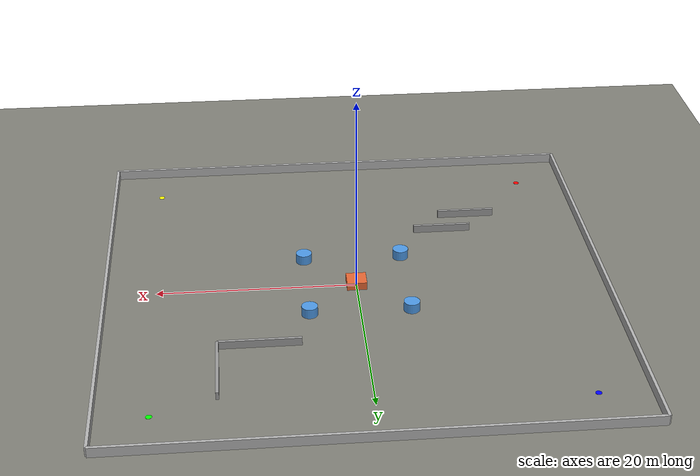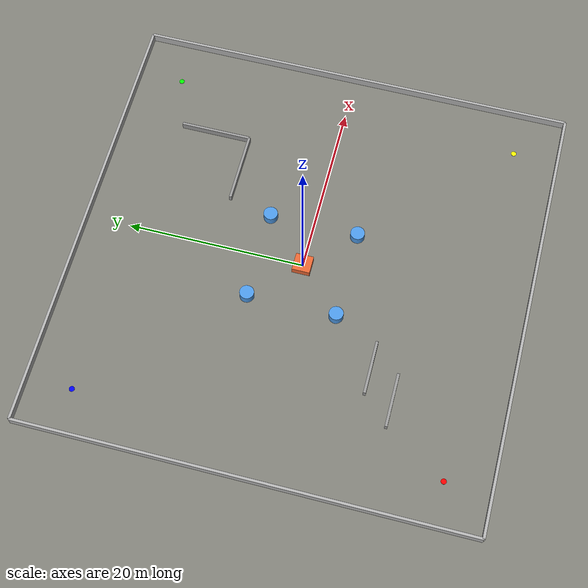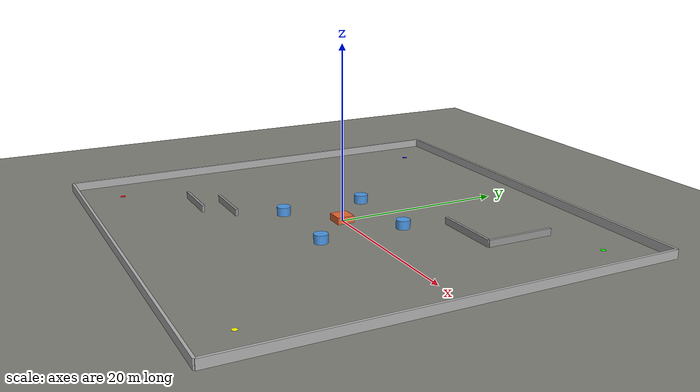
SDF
<?xml version="1.0" ?>
<sdf version="1.6">
  <world name="algorithm_arena">

    <physics type="ode">
      <real_time_update_rate>1000.0</real_time_update_rate>
      <max_step_size>0.001</max_step_size>
      <real_time_factor>1</real_time_factor>
    </physics>

    <scene>
      <ambient>0.6 0.6 0.6 1</ambient>
      <background>0.7 0.8 0.95 1</background>
      <shadows>1</shadows>
    </scene>

    <light type="directional" name="sun">
      <cast_shadows>true</cast_shadows>
      <pose>0 0 10 0 0 0</pose>
      <diffuse>0.9 0.9 0.9 1</diffuse>
      <specular>0.2 0.2 0.2 1</specular>
      <attenuation>
        <range>1000</range>
        <constant>0.9</constant>
        <linear>0.01</linear>
        <quadratic>0.001</quadratic>
      </attenuation>
      <direction>-0.5 0.1 -0.9</direction>
    </light>

    <!-- 地面 -->
    <model name="ground_plane">
      <static>true</static>
      <link name="link">
        <collision name="collision">
          <geometry><plane><normal>0 0 1</normal><size>100 100</size></plane></geometry>
          <surface><friction><ode><mu>100</mu><mu2>50</mu2></ode></friction></surface>
        </collision>
        <visual name="visual">
          <geometry><plane><normal>0 0 1</normal><size>100 100</size></plane></geometry>
          <material>
            <ambient>0.45 0.45 0.42 1</ambient>
            <diffuse>0.5 0.5 0.47 1</diffuse>
          </material>
        </visual>
      </link>
    </model>

    <!-- 全局位姿发布（供轨迹记录/区域触发使用） -->
    <plugin name="gazebo_ros_state" filename="libgazebo_ros_state.so"/>

    <!-- ==================== 边界墙 ==================== -->
    <!-- 北墙 -->
    <model name="wall_north">
      <static>true</static>
      <link name="link">
        <pose>0 25 0.5 0 0 0</pose>
        <collision name="c"><geometry><box><size>50 0.3 1.0</size></box></geometry></collision>
        <visual name="v">
          <geometry><box><size>50 0.3 1.0</size></box></geometry>
          <material><ambient>0.6 0.6 0.6 1</ambient><diffuse>0.7 0.7 0.7 1</diffuse></material>
        </visual>
      </link>
    </model>
    <!-- 南墙 -->
    <model name="wall_south">
      <static>true</static>
      <link name="link">
        <pose>0 -25 0.5 0 0 0</pose>
        <collision name="c"><geometry><box><size>50 0.3 1.0</size></box></geometry></collision>
        <visual name="v">
          <geometry><box><size>50 0.3 1.0</size></box></geometry>
          <material><ambient>0.6 0.6 0.6 1</ambient><diffuse>0.7 0.7 0.7 1</diffuse></material>
        </visual>
      </link>
    </model>
    <!-- 东墙 -->
    <model name="wall_east">
      <static>true</static>
      <link name="link">
        <pose>25 0 0.5 0 0 1.5708</pose>
        <collision name="c"><geometry><box><size>50 0.3 1.0</size></box></geometry></collision>
        <visual name="v">
          <geometry><box><size>50 0.3 1.0</size></box></geometry>
          <material><ambient>0.6 0.6 0.6 1</ambient><diffuse>0.7 0.7 0.7 1</diffuse></material>
        </visual>
      </link>
    </model>
    <!-- 西墙 -->
    <model name="wall_west">
      <static>true</static>
      <link name="link">
        <pose>-25 0 0.5 0 0 1.5708</pose>
        <collision name="c"><geometry><box><size>50 0.3 1.0</size></box></geometry></collision>
        <visual name="v">
          <geometry><box><size>50 0.3 1.0</size></box></geometry>
          <material><ambient>0.6 0.6 0.6 1</ambient><diffuse>0.7 0.7 0.7 1</diffuse></material>
        </visual>
      </link>
    </model>

    <!-- ==================== 障碍物区域 ==================== -->
    <!-- 中央障碍物群 -->
    <model name="obstacle_box_1">
      <static>true</static>
      <link name="link">
        <pose>0 0 0.4 0 0 0</pose>
        <collision name="c"><geometry><box><size>2.0 2.0 0.8</size></box></geometry></collision>
        <visual name="v">
          <geometry><box><size>2.0 2.0 0.8</size></box></geometry>
          <material><ambient>0.8 0.3 0.1 1</ambient><diffuse>0.9 0.4 0.2 1</diffuse></material>
        </visual>
      </link>
    </model>

    <model name="obstacle_cylinder_1">
      <static>true</static>
      <link name="link">
        <pose>5 5 0.5 0 0 0</pose>
        <collision name="c"><geometry><cylinder><radius>0.8</radius><length>1.0</length></cylinder></geometry></collision>
        <visual name="v">
          <geometry><cylinder><radius>0.8</radius><length>1.0</length></cylinder></geometry>
          <material><ambient>0.2 0.5 0.8 1</ambient><diffuse>0.3 0.6 0.9 1</diffuse></material>
        </visual>
      </link>
    </model>

    <model name="obstacle_cylinder_2">
      <static>true</static>
      <link name="link">
        <pose>-5 5 0.5 0 0 0</pose>
        <collision name="c"><geometry><cylinder><radius>0.8</radius><length>1.0</length></cylinder></geometry></collision>
        <visual name="v">
          <geometry><cylinder><radius>0.8</radius><length>1.0</length></cylinder></geometry>
          <material><ambient>0.2 0.5 0.8 1</ambient><diffuse>0.3 0.6 0.9 1</diffuse></material>
        </visual>
      </link>
    </model>

    <model name="obstacle_cylinder_3">
      <static>true</static>
      <link name="link">
        <pose>5 -5 0.5 0 0 0</pose>
        <collision name="c"><geometry><cylinder><radius>0.8</radius><length>1.0</length></cylinder></geometry></collision>
        <visual name="v">
          <geometry><cylinder><radius>0.8</radius><length>1.0</length></cylinder></geometry>
          <material><ambient>0.2 0.5 0.8 1</ambient><diffuse>0.3 0.6 0.9 1</diffuse></material>
        </visual>
      </link>
    </model>

    <model name="obstacle_cylinder_4">
      <static>true</static>
      <link name="link">
        <pose>-5 -5 0.5 0 0 0</pose>
        <collision name="c"><geometry><cylinder><radius>0.8</radius><length>1.0</length></cylinder></geometry></collision>
        <visual name="v">
          <geometry><cylinder><radius>0.8</radius><length>1.0</length></cylinder></geometry>
          <material><ambient>0.2 0.5 0.8 1</ambient><diffuse>0.3 0.6 0.9 1</diffuse></material>
        </visual>
      </link>
    </model>

    <!-- L形通道墙 -->
    <model name="wall_L_h">
      <static>true</static>
      <link name="link">
        <pose>10 10 0.4 0 0 0</pose>
        <collision name="c"><geometry><box><size>8.0 0.3 0.8</size></box></geometry></collision>
        <visual name="v">
          <geometry><box><size>8.0 0.3 0.8</size></box></geometry>
          <material><ambient>0.5 0.5 0.5 1</ambient><diffuse>0.6 0.6 0.6 1</diffuse></material>
        </visual>
      </link>
    </model>
    <model name="wall_L_v">
      <static>true</static>
      <link name="link">
        <pose>14 14 0.4 0 0 1.5708</pose>
        <collision name="c"><geometry><box><size>8.0 0.3 0.8</size></box></geometry></collision>
        <visual name="v">
          <geometry><box><size>8.0 0.3 0.8</size></box></geometry>
          <material><ambient>0.5 0.5 0.5 1</ambient><diffuse>0.6 0.6 0.6 1</diffuse></material>
        </visual>
      </link>
    </model>

    <!-- S形通道墙 -->
    <model name="wall_S_1">
      <static>true</static>
      <link name="link">
        <pose>-10 -10 0.4 0 0 0</pose>
        <collision name="c"><geometry><box><size>6.0 0.3 0.8</size></box></geometry></collision>
        <visual name="v">
          <geometry><box><size>6.0 0.3 0.8</size></box></geometry>
          <material><ambient>0.5 0.5 0.5 1</ambient><diffuse>0.6 0.6 0.6 1</diffuse></material>
        </visual>
      </link>
    </model>
    <model name="wall_S_2">
      <static>true</static>
      <link name="link">
        <pose>-13 -13 0.4 0 0 0</pose>
        <collision name="c"><geometry><box><size>6.0 0.3 0.8</size></box></geometry></collision>
        <visual name="v">
          <geometry><box><size>6.0 0.3 0.8</size></box></geometry>
          <material><ambient>0.5 0.5 0.5 1</ambient><diffuse>0.6 0.6 0.6 1</diffuse></material>
        </visual>
      </link>
    </model>

    <!-- ==================== 地面标记（视觉参考） ==================== -->
    <!-- 中心标记 -->
    <model name="center_mark">
      <static>true</static>
      <link name="link">
        <pose>0 0 0.01 0 0 0</pose>
        <visual name="v">
          <geometry><cylinder><radius>0.5</radius><length>0.02</length></cylinder></geometry>
          <material><ambient>0.9 0.9 0.0 1</ambient><diffuse>1.0 1.0 0.0 1</diffuse></material>
        </visual>
      </link>
    </model>

    <!-- 四角标记 -->
    <model name="corner_mark_NE">
      <static>true</static>
      <link name="link">
        <pose>20 20 0.01 0 0 0</pose>
        <visual name="v">
          <geometry><cylinder><radius>0.3</radius><length>0.02</length></cylinder></geometry>
          <material><ambient>0.0 0.8 0.0 1</ambient><diffuse>0.0 1.0 0.0 1</diffuse></material>
        </visual>
      </link>
    </model>
    <model name="corner_mark_NW">
      <static>true</static>
      <link name="link">
        <pose>-20 20 0.01 0 0 0</pose>
        <visual name="v">
          <geometry><cylinder><radius>0.3</radius><length>0.02</length></cylinder></geometry>
          <material><ambient>0.0 0.0 0.8 1</ambient><diffuse>0.0 0.0 1.0 1</diffuse></material>
        </visual>
      </link>
    </model>
    <model name="corner_mark_SE">
      <static>true</static>
      <link name="link">
        <pose>20 -20 0.01 0 0 0</pose>
        <visual name="v">
          <geometry><cylinder><radius>0.3</radius><length>0.02</length></cylinder></geometry>
          <material><ambient>0.8 0.8 0.0 1</ambient><diffuse>1.0 1.0 0.0 1</diffuse></material>
        </visual>
      </link>
    </model>
    <model name="corner_mark_SW">
      <static>true</static>
      <link name="link">
        <pose>-20 -20 0.01 0 0 0</pose>
        <visual name="v">
          <geometry><cylinder><radius>0.3</radius><length>0.02</length></cylinder></geometry>
          <material><ambient>0.8 0.0 0.0 1</ambient><diffuse>1.0 0.0 0.0 1</diffuse></material>
        </visual>
      </link>
    </model>

  </world>
</sdf>
